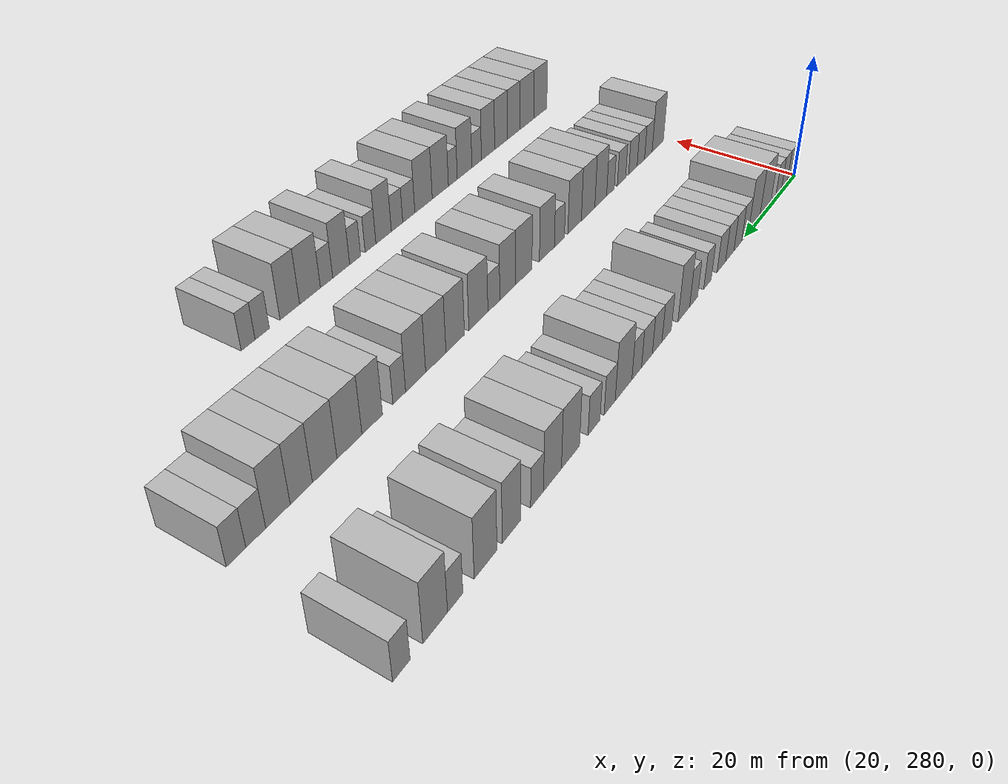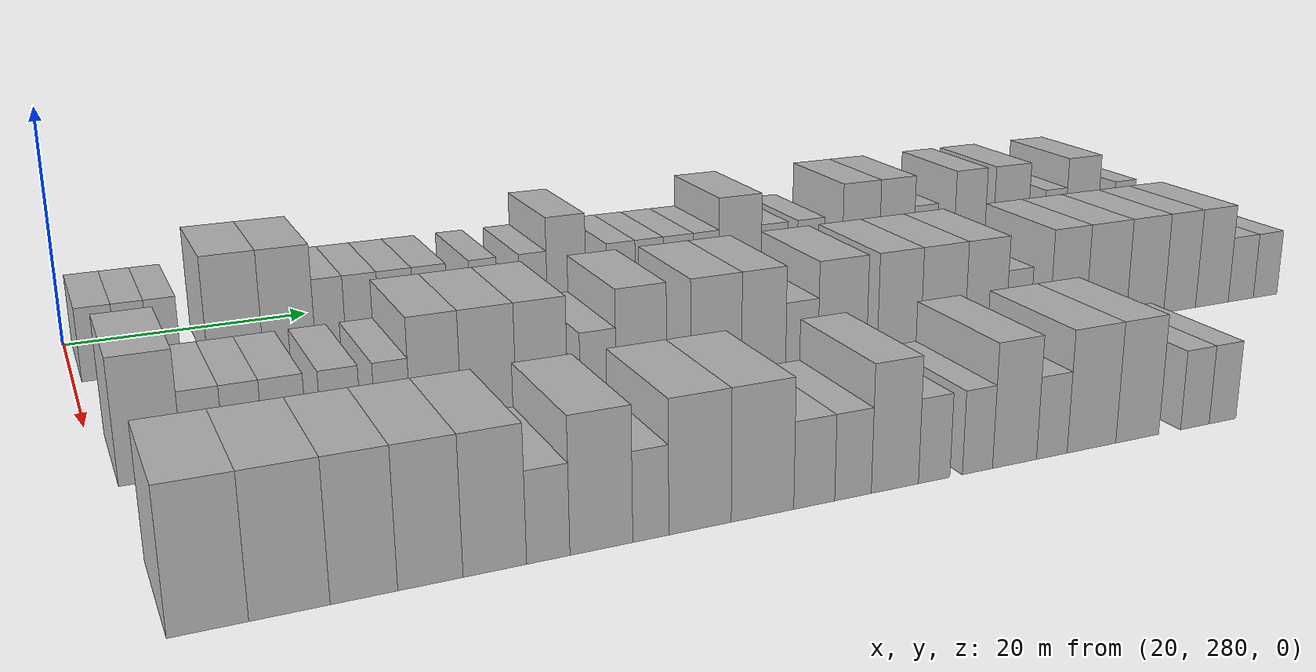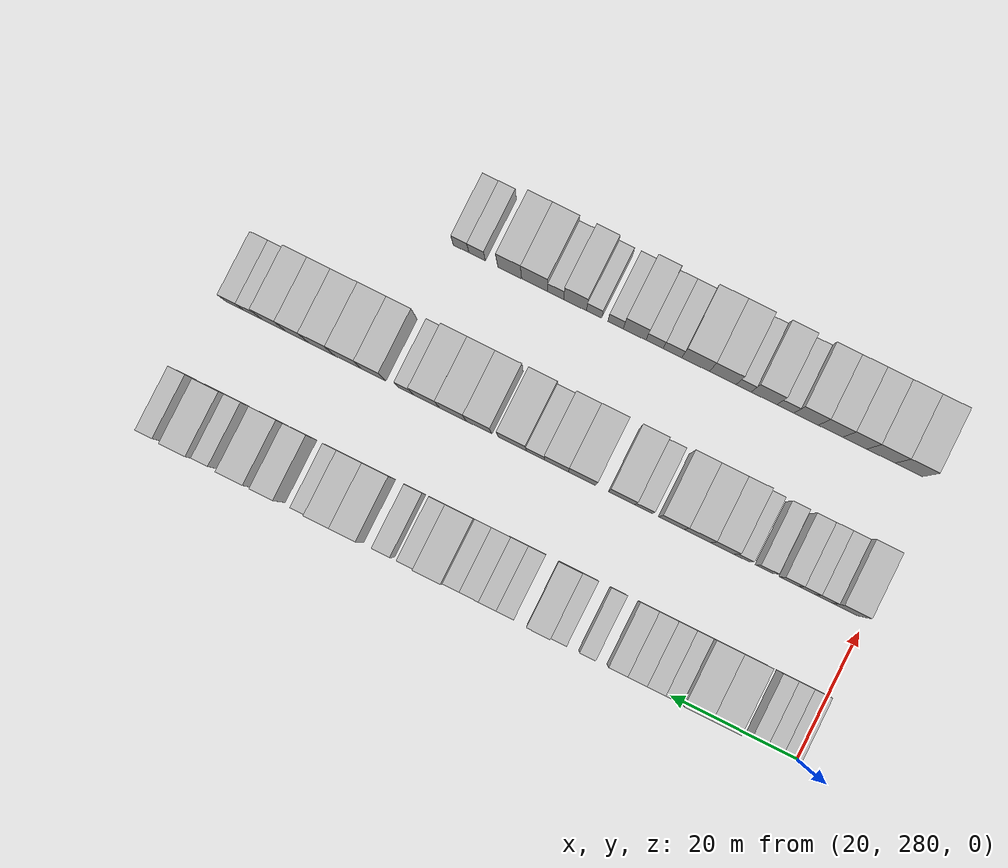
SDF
<sdf version="1.6">
 <world name="default">
  <model name="building_174">
   <static>1</static>
   <pose>25.0000 281.9792 0 0.000000 0.000000 0.000000</pose>
   <link name="link">
    <pose>0 0 3.00 0 0 0</pose>
    <collision name="collision"><geometry><box><size>10.0000 2.6993 6.0000</size></box></geometry></collision>
    <visual name="visual">
     <cast_shadows>0</cast_shadows>
     <geometry><box><size>10.0000 2.6993 6.0000</size></box></geometry>
     <material>
      <script>
       <uri>model://HANNAS_wall/materials/scripts</uri>
       <uri>model://HANNAS_wall/materials/textures</uri>
       <name>vrc/HANNAS_wall</name>
      </script>
     </material>
    </visual>
   </link>
  </model>
  <model name="building_175">
   <static>1</static>
   <pose>25.0000 284.5363 0 0.000000 0.000000 0.000000</pose>
   <link name="link">
    <pose>0 0 3.00 0 0 0</pose>
    <collision name="collision"><geometry><box><size>10.0000 2.4149 6.0000</size></box></geometry></collision>
    <visual name="visual">
     <cast_shadows>0</cast_shadows>
     <geometry><box><size>10.0000 2.4149 6.0000</size></box></geometry>
     <material>
      <script>
       <uri>model://HANNAS_wall/materials/scripts</uri>
       <uri>model://HANNAS_wall/materials/textures</uri>
       <name>vrc/HANNAS_wall</name>
      </script>
     </material>
    </visual>
   </link>
  </model>
  <model name="building_176">
   <static>1</static>
   <pose>25.0000 286.9553 0 0.000000 0.000000 0.000000</pose>
   <link name="link">
    <pose>0 0 3.00 0 0 0</pose>
    <collision name="collision"><geometry><box><size>10.0000 2.4232 6.0000</size></box></geometry></collision>
    <visual name="visual">
     <cast_shadows>0</cast_shadows>
     <geometry><box><size>10.0000 2.4232 6.0000</size></box></geometry>
     <material>
      <script>
       <uri>model://HANNAS_wall/materials/scripts</uri>
       <uri>model://HANNAS_wall/materials/textures</uri>
       <name>vrc/HANNAS_wall</name>
      </script>
     </material>
    </visual>
   </link>
  </model>
  <model name="building_177">
   <static>1</static>
   <pose>25.0000 292.3593 0 0.000000 0.000000 0.000000</pose>
   <link name="link">
    <pose>0 0 4.50 0 0 0</pose>
    <collision name="collision"><geometry><box><size>10.0000 4.3847 9.0000</size></box></geometry></collision>
    <visual name="visual">
     <cast_shadows>0</cast_shadows>
     <geometry><box><size>10.0000 4.3847 9.0000</size></box></geometry>
     <material>
      <script>
       <uri>model://HANNAS_wall/materials/scripts</uri>
       <uri>model://HANNAS_wall/materials/textures</uri>
       <name>vrc/HANNAS_wall</name>
      </script>
     </material>
    </visual>
   </link>
  </model>
  <model name="building_178">
   <static>1</static>
   <pose>25.0000 296.6781 0 0.000000 0.000000 0.000000</pose>
   <link name="link">
    <pose>0 0 4.50 0 0 0</pose>
    <collision name="collision"><geometry><box><size>10.0000 4.2529 9.0000</size></box></geometry></collision>
    <visual name="visual">
     <cast_shadows>0</cast_shadows>
     <geometry><box><size>10.0000 4.2529 9.0000</size></box></geometry>
     <material>
      <script>
       <uri>model://HANNAS_wall/materials/scripts</uri>
       <uri>model://HANNAS_wall/materials/textures</uri>
       <name>vrc/HANNAS_wall</name>
      </script>
     </material>
    </visual>
   </link>
  </model>
  <model name="building_179">
   <static>1</static>
   <pose>25.0000 300.0631 0 0.000000 0.000000 0.000000</pose>
   <link name="link">
    <pose>0 0 3.00 0 0 0</pose>
    <collision name="collision"><geometry><box><size>10.0000 2.5172 6.0000</size></box></geometry></collision>
    <visual name="visual">
     <cast_shadows>0</cast_shadows>
     <geometry><box><size>10.0000 2.5172 6.0000</size></box></geometry>
     <material>
      <script>
       <uri>model://HANNAS_wall/materials/scripts</uri>
       <uri>model://HANNAS_wall/materials/textures</uri>
       <name>vrc/HANNAS_wall</name>
      </script>
     </material>
    </visual>
   </link>
  </model>
  <model name="building_180">
   <static>1</static>
   <pose>25.0000 302.7506 0 0.000000 0.000000 0.000000</pose>
   <link name="link">
    <pose>0 0 3.00 0 0 0</pose>
    <collision name="collision"><geometry><box><size>10.0000 2.8576 6.0000</size></box></geometry></collision>
    <visual name="visual">
     <cast_shadows>0</cast_shadows>
     <geometry><box><size>10.0000 2.8576 6.0000</size></box></geometry>
     <material>
      <script>
       <uri>model://HANNAS_wall/materials/scripts</uri>
       <uri>model://HANNAS_wall/materials/textures</uri>
       <name>vrc/HANNAS_wall</name>
      </script>
     </material>
    </visual>
   </link>
  </model>
  <model name="building_181">
   <static>1</static>
   <pose>25.0000 305.6678 0 0.000000 0.000000 0.000000</pose>
   <link name="link">
    <pose>0 0 3.00 0 0 0</pose>
    <collision name="collision"><geometry><box><size>10.0000 2.9768 6.0000</size></box></geometry></collision>
    <visual name="visual">
     <cast_shadows>0</cast_shadows>
     <geometry><box><size>10.0000 2.9768 6.0000</size></box></geometry>
     <material>
      <script>
       <uri>model://HANNAS_wall/materials/scripts</uri>
       <uri>model://HANNAS_wall/materials/textures</uri>
       <name>vrc/HANNAS_wall</name>
      </script>
     </material>
    </visual>
   </link>
  </model>
  <model name="building_182">
   <static>1</static>
   <pose>25.0000 308.6237 0 0.000000 0.000000 0.000000</pose>
   <link name="link">
    <pose>0 0 3.00 0 0 0</pose>
    <collision name="collision"><geometry><box><size>10.0000 2.9351 6.0000</size></box></geometry></collision>
    <visual name="visual">
     <cast_shadows>0</cast_shadows>
     <geometry><box><size>10.0000 2.9351 6.0000</size></box></geometry>
     <material>
      <script>
       <uri>model://HANNAS_wall/materials/scripts</uri>
       <uri>model://HANNAS_wall/materials/textures</uri>
       <name>vrc/HANNAS_wall</name>
      </script>
     </material>
    </visual>
   </link>
  </model>
  <model name="building_183">
   <static>1</static>
   <pose>25.0000 313.3270 0 0.000000 0.000000 0.000000</pose>
   <link name="link">
    <pose>0 0 3.00 0 0 0</pose>
    <collision name="collision"><geometry><box><size>10.0000 2.4715 6.0000</size></box></geometry></collision>
    <visual name="visual">
     <cast_shadows>0</cast_shadows>
     <geometry><box><size>10.0000 2.4715 6.0000</size></box></geometry>
     <material>
      <script>
       <uri>model://HANNAS_wall/materials/scripts</uri>
       <uri>model://HANNAS_wall/materials/textures</uri>
       <name>vrc/HANNAS_wall</name>
      </script>
     </material>
    </visual>
   </link>
  </model>
  <model name="building_184">
   <static>1</static>
   <pose>25.0000 317.8274 0 0.000000 0.000000 0.000000</pose>
   <link name="link">
    <pose>0 0 3.00 0 0 0</pose>
    <collision name="collision"><geometry><box><size>10.0000 2.5294 6.0000</size></box></geometry></collision>
    <visual name="visual">
     <cast_shadows>0</cast_shadows>
     <geometry><box><size>10.0000 2.5294 6.0000</size></box></geometry>
     <material>
      <script>
       <uri>model://HANNAS_wall/materials/scripts</uri>
       <uri>model://HANNAS_wall/materials/textures</uri>
       <name>vrc/HANNAS_wall</name>
      </script>
     </material>
    </visual>
   </link>
  </model>
  <model name="building_185">
   <static>1</static>
   <pose>25.0000 320.9098 0 0.000000 0.000000 0.000000</pose>
   <link name="link">
    <pose>0 0 4.50 0 0 0</pose>
    <collision name="collision"><geometry><box><size>10.0000 3.6354 9.0000</size></box></geometry></collision>
    <visual name="visual">
     <cast_shadows>0</cast_shadows>
     <geometry><box><size>10.0000 3.6354 9.0000</size></box></geometry>
     <material>
      <script>
       <uri>model://HANNAS_wall/materials/scripts</uri>
       <uri>model://HANNAS_wall/materials/textures</uri>
       <name>vrc/HANNAS_wall</name>
      </script>
     </material>
    </visual>
   </link>
  </model>
  <model name="building_186">
   <static>1</static>
   <pose>25.0000 326.0894 0 0.000000 0.000000 0.000000</pose>
   <link name="link">
    <pose>0 0 3.00 0 0 0</pose>
    <collision name="collision"><geometry><box><size>10.0000 2.7237 6.0000</size></box></geometry></collision>
    <visual name="visual">
     <cast_shadows>0</cast_shadows>
     <geometry><box><size>10.0000 2.7237 6.0000</size></box></geometry>
     <material>
      <script>
       <uri>model://HANNAS_wall/materials/scripts</uri>
       <uri>model://HANNAS_wall/materials/textures</uri>
       <name>vrc/HANNAS_wall</name>
      </script>
     </material>
    </visual>
   </link>
  </model>
  <model name="building_187">
   <static>1</static>
   <pose>25.0000 328.8240 0 0.000000 0.000000 0.000000</pose>
   <link name="link">
    <pose>0 0 3.00 0 0 0</pose>
    <collision name="collision"><geometry><box><size>10.0000 2.7455 6.0000</size></box></geometry></collision>
    <visual name="visual">
     <cast_shadows>0</cast_shadows>
     <geometry><box><size>10.0000 2.7455 6.0000</size></box></geometry>
     <material>
      <script>
       <uri>model://HANNAS_wall/materials/scripts</uri>
       <uri>model://HANNAS_wall/materials/textures</uri>
       <name>vrc/HANNAS_wall</name>
      </script>
     </material>
    </visual>
   </link>
  </model>
  <model name="building_188">
   <static>1</static>
   <pose>25.0000 331.6966 0 0.000000 0.000000 0.000000</pose>
   <link name="link">
    <pose>0 0 3.00 0 0 0</pose>
    <collision name="collision"><geometry><box><size>10.0000 2.9997 6.0000</size></box></geometry></collision>
    <visual name="visual">
     <cast_shadows>0</cast_shadows>
     <geometry><box><size>10.0000 2.9997 6.0000</size></box></geometry>
     <material>
      <script>
       <uri>model://HANNAS_wall/materials/scripts</uri>
       <uri>model://HANNAS_wall/materials/textures</uri>
       <name>vrc/HANNAS_wall</name>
      </script>
     </material>
    </visual>
   </link>
  </model>
  <model name="building_189">
   <static>1</static>
   <pose>25.0000 334.4932 0 0.000000 0.000000 0.000000</pose>
   <link name="link">
    <pose>0 0 3.00 0 0 0</pose>
    <collision name="collision"><geometry><box><size>10.0000 2.5935 6.0000</size></box></geometry></collision>
    <visual name="visual">
     <cast_shadows>0</cast_shadows>
     <geometry><box><size>10.0000 2.5935 6.0000</size></box></geometry>
     <material>
      <script>
       <uri>model://HANNAS_wall/materials/scripts</uri>
       <uri>model://HANNAS_wall/materials/textures</uri>
       <name>vrc/HANNAS_wall</name>
      </script>
     </material>
    </visual>
   </link>
  </model>
  <model name="building_190">
   <static>1</static>
   <pose>25.0000 337.9641 0 0.000000 0.000000 0.000000</pose>
   <link name="link">
    <pose>0 0 4.50 0 0 0</pose>
    <collision name="collision"><geometry><box><size>10.0000 4.3481 9.0000</size></box></geometry></collision>
    <visual name="visual">
     <cast_shadows>0</cast_shadows>
     <geometry><box><size>10.0000 4.3481 9.0000</size></box></geometry>
     <material>
      <script>
       <uri>model://HANNAS_wall/materials/scripts</uri>
       <uri>model://HANNAS_wall/materials/textures</uri>
       <name>vrc/HANNAS_wall</name>
      </script>
     </material>
    </visual>
   </link>
  </model>
  <model name="building_191">
   <static>1</static>
   <pose>25.0000 341.5309 0 0.000000 0.000000 0.000000</pose>
   <link name="link">
    <pose>0 0 3.00 0 0 0</pose>
    <collision name="collision"><geometry><box><size>10.0000 2.7856 6.0000</size></box></geometry></collision>
    <visual name="visual">
     <cast_shadows>0</cast_shadows>
     <geometry><box><size>10.0000 2.7856 6.0000</size></box></geometry>
     <material>
      <script>
       <uri>model://HANNAS_wall/materials/scripts</uri>
       <uri>model://HANNAS_wall/materials/textures</uri>
       <name>vrc/HANNAS_wall</name>
      </script>
     </material>
    </visual>
   </link>
  </model>
  <model name="building_192">
   <static>1</static>
   <pose>25.0000 345.3590 0 0.000000 0.000000 0.000000</pose>
   <link name="link">
    <pose>0 0 3.00 0 0 0</pose>
    <collision name="collision"><geometry><box><size>10.0000 2.8706 6.0000</size></box></geometry></collision>
    <visual name="visual">
     <cast_shadows>0</cast_shadows>
     <geometry><box><size>10.0000 2.8706 6.0000</size></box></geometry>
     <material>
      <script>
       <uri>model://HANNAS_wall/materials/scripts</uri>
       <uri>model://HANNAS_wall/materials/textures</uri>
       <name>vrc/HANNAS_wall</name>
      </script>
     </material>
    </visual>
   </link>
  </model>
  <model name="building_193">
   <static>1</static>
   <pose>25.0000 350.8425 0 0.000000 0.000000 0.000000</pose>
   <link name="link">
    <pose>0 0 4.50 0 0 0</pose>
    <collision name="collision"><geometry><box><size>10.0000 4.0965 9.0000</size></box></geometry></collision>
    <visual name="visual">
     <cast_shadows>0</cast_shadows>
     <geometry><box><size>10.0000 4.0965 9.0000</size></box></geometry>
     <material>
      <script>
       <uri>model://HANNAS_wall/materials/scripts</uri>
       <uri>model://HANNAS_wall/materials/textures</uri>
       <name>vrc/HANNAS_wall</name>
      </script>
     </material>
    </visual>
   </link>
  </model>
  <model name="building_194">
   <static>1</static>
   <pose>25.0000 354.8311 0 0.000000 0.000000 0.000000</pose>
   <link name="link">
    <pose>0 0 4.50 0 0 0</pose>
    <collision name="collision"><geometry><box><size>10.0000 3.8807 9.0000</size></box></geometry></collision>
    <visual name="visual">
     <cast_shadows>0</cast_shadows>
     <geometry><box><size>10.0000 3.8807 9.0000</size></box></geometry>
     <material>
      <script>
       <uri>model://HANNAS_wall/materials/scripts</uri>
       <uri>model://HANNAS_wall/materials/textures</uri>
       <name>vrc/HANNAS_wall</name>
      </script>
     </material>
    </visual>
   </link>
  </model>
  <model name="building_195">
   <static>1</static>
   <pose>25.0000 358.1082 0 0.000000 0.000000 0.000000</pose>
   <link name="link">
    <pose>0 0 3.00 0 0 0</pose>
    <collision name="collision"><geometry><box><size>10.0000 2.6734 6.0000</size></box></geometry></collision>
    <visual name="visual">
     <cast_shadows>0</cast_shadows>
     <geometry><box><size>10.0000 2.6734 6.0000</size></box></geometry>
     <material>
      <script>
       <uri>model://HANNAS_wall/materials/scripts</uri>
       <uri>model://HANNAS_wall/materials/textures</uri>
       <name>vrc/HANNAS_wall</name>
      </script>
     </material>
    </visual>
   </link>
  </model>
  <model name="building_196">
   <static>1</static>
   <pose>25.0000 363.2557 0 0.000000 0.000000 0.000000</pose>
   <link name="link">
    <pose>0 0 4.50 0 0 0</pose>
    <collision name="collision"><geometry><box><size>10.0000 3.6217 9.0000</size></box></geometry></collision>
    <visual name="visual">
     <cast_shadows>0</cast_shadows>
     <geometry><box><size>10.0000 3.6217 9.0000</size></box></geometry>
     <material>
      <script>
       <uri>model://HANNAS_wall/materials/scripts</uri>
       <uri>model://HANNAS_wall/materials/textures</uri>
       <name>vrc/HANNAS_wall</name>
      </script>
     </material>
    </visual>
   </link>
  </model>
  <model name="building_197">
   <static>1</static>
   <pose>25.0000 368.1663 0 0.000000 0.000000 0.000000</pose>
   <link name="link">
    <pose>0 0 4.50 0 0 0</pose>
    <collision name="collision"><geometry><box><size>10.0000 4.1995 9.0000</size></box></geometry></collision>
    <visual name="visual">
     <cast_shadows>0</cast_shadows>
     <geometry><box><size>10.0000 4.1995 9.0000</size></box></geometry>
     <material>
      <script>
       <uri>model://HANNAS_wall/materials/scripts</uri>
       <uri>model://HANNAS_wall/materials/textures</uri>
       <name>vrc/HANNAS_wall</name>
      </script>
     </material>
    </visual>
   </link>
  </model>
  <model name="building_198">
   <static>1</static>
   <pose>25.0000 373.5846 0 0.000000 0.000000 0.000000</pose>
   <link name="link">
    <pose>0 0 3.00 0 0 0</pose>
    <collision name="collision"><geometry><box><size>10.0000 2.6371 6.0000</size></box></geometry></collision>
    <visual name="visual">
     <cast_shadows>0</cast_shadows>
     <geometry><box><size>10.0000 2.6371 6.0000</size></box></geometry>
     <material>
      <script>
       <uri>model://HANNAS_wall/materials/scripts</uri>
       <uri>model://HANNAS_wall/materials/textures</uri>
       <name>vrc/HANNAS_wall</name>
      </script>
     </material>
    </visual>
   </link>
  </model>
  <model name="building_199">
   <static>1</static>
   <pose>25.0000 376.9430 0 0.000000 0.000000 0.000000</pose>
   <link name="link">
    <pose>0 0 4.50 0 0 0</pose>
    <collision name="collision"><geometry><box><size>10.0000 4.0798 9.0000</size></box></geometry></collision>
    <visual name="visual">
     <cast_shadows>0</cast_shadows>
     <geometry><box><size>10.0000 4.0798 9.0000</size></box></geometry>
     <material>
      <script>
       <uri>model://HANNAS_wall/materials/scripts</uri>
       <uri>model://HANNAS_wall/materials/textures</uri>
       <name>vrc/HANNAS_wall</name>
      </script>
     </material>
    </visual>
   </link>
  </model>
  <model name="building_200">
   <static>1</static>
   <pose>25.0000 382.3294 0 0.000000 0.000000 0.000000</pose>
   <link name="link">
    <pose>0 0 3.00 0 0 0</pose>
    <collision name="collision"><geometry><box><size>10.0000 2.6931 6.0000</size></box></geometry></collision>
    <visual name="visual">
     <cast_shadows>0</cast_shadows>
     <geometry><box><size>10.0000 2.6931 6.0000</size></box></geometry>
     <material>
      <script>
       <uri>model://HANNAS_wall/materials/scripts</uri>
       <uri>model://HANNAS_wall/materials/textures</uri>
       <name>vrc/HANNAS_wall</name>
      </script>
     </material>
    </visual>
   </link>
  </model>
  <model name="building_369">
   <static>1</static>
   <pose>47.0000 283.2552 0 0.000000 0.000000 0.000000</pose>
   <link name="link">
    <pose>0 0 4.50 0 0 0</pose>
    <collision name="collision"><geometry><box><size>10.0000 4.1575 9.0000</size></box></geometry></collision>
    <visual name="visual">
     <cast_shadows>0</cast_shadows>
     <geometry><box><size>10.0000 4.1575 9.0000</size></box></geometry>
     <material>
      <script>
       <uri>model://HANNAS_wall/materials/scripts</uri>
       <uri>model://HANNAS_wall/materials/textures</uri>
       <name>vrc/HANNAS_wall</name>
      </script>
     </material>
    </visual>
   </link>
  </model>
  <model name="building_370">
   <static>1</static>
   <pose>47.0000 286.6943 0 0.000000 0.000000 0.000000</pose>
   <link name="link">
    <pose>0 0 3.00 0 0 0</pose>
    <collision name="collision"><geometry><box><size>10.0000 2.7209 6.0000</size></box></geometry></collision>
    <visual name="visual">
     <cast_shadows>0</cast_shadows>
     <geometry><box><size>10.0000 2.7209 6.0000</size></box></geometry>
     <material>
      <script>
       <uri>model://HANNAS_wall/materials/scripts</uri>
       <uri>model://HANNAS_wall/materials/textures</uri>
       <name>vrc/HANNAS_wall</name>
      </script>
     </material>
    </visual>
   </link>
  </model>
  <model name="building_371">
   <static>1</static>
   <pose>47.0000 289.3638 0 0.000000 0.000000 0.000000</pose>
   <link name="link">
    <pose>0 0 3.00 0 0 0</pose>
    <collision name="collision"><geometry><box><size>10.0000 2.6180 6.0000</size></box></geometry></collision>
    <visual name="visual">
     <cast_shadows>0</cast_shadows>
     <geometry><box><size>10.0000 2.6180 6.0000</size></box></geometry>
     <material>
      <script>
       <uri>model://HANNAS_wall/materials/scripts</uri>
       <uri>model://HANNAS_wall/materials/textures</uri>
       <name>vrc/HANNAS_wall</name>
      </script>
     </material>
    </visual>
   </link>
  </model>
  <model name="building_372">
   <static>1</static>
   <pose>47.0000 292.1551 0 0.000000 0.000000 0.000000</pose>
   <link name="link">
    <pose>0 0 3.00 0 0 0</pose>
    <collision name="collision"><geometry><box><size>10.0000 2.9647 6.0000</size></box></geometry></collision>
    <visual name="visual">
     <cast_shadows>0</cast_shadows>
     <geometry><box><size>10.0000 2.9647 6.0000</size></box></geometry>
     <material>
      <script>
       <uri>model://HANNAS_wall/materials/scripts</uri>
       <uri>model://HANNAS_wall/materials/textures</uri>
       <name>vrc/HANNAS_wall</name>
      </script>
     </material>
    </visual>
   </link>
  </model>
  <model name="building_373">
   <static>1</static>
   <pose>47.0000 296.0272 0 0.000000 0.000000 0.000000</pose>
   <link name="link">
    <pose>0 0 3.00 0 0 0</pose>
    <collision name="collision"><geometry><box><size>10.0000 2.7796 6.0000</size></box></geometry></collision>
    <visual name="visual">
     <cast_shadows>0</cast_shadows>
     <geometry><box><size>10.0000 2.7796 6.0000</size></box></geometry>
     <material>
      <script>
       <uri>model://HANNAS_wall/materials/scripts</uri>
       <uri>model://HANNAS_wall/materials/textures</uri>
       <name>vrc/HANNAS_wall</name>
      </script>
     </material>
    </visual>
   </link>
  </model>
  <model name="building_374">
   <static>1</static>
   <pose>47.0000 299.6677 0 0.000000 0.000000 0.000000</pose>
   <link name="link">
    <pose>0 0 3.00 0 0 0</pose>
    <collision name="collision"><geometry><box><size>10.0000 2.5014 6.0000</size></box></geometry></collision>
    <visual name="visual">
     <cast_shadows>0</cast_shadows>
     <geometry><box><size>10.0000 2.5014 6.0000</size></box></geometry>
     <material>
      <script>
       <uri>model://HANNAS_wall/materials/scripts</uri>
       <uri>model://HANNAS_wall/materials/textures</uri>
       <name>vrc/HANNAS_wall</name>
      </script>
     </material>
    </visual>
   </link>
  </model>
  <model name="building_375">
   <static>1</static>
   <pose>47.0000 302.7781 0 0.000000 0.000000 0.000000</pose>
   <link name="link">
    <pose>0 0 4.50 0 0 0</pose>
    <collision name="collision"><geometry><box><size>10.0000 3.7193 9.0000</size></box></geometry></collision>
    <visual name="visual">
     <cast_shadows>0</cast_shadows>
     <geometry><box><size>10.0000 3.7193 9.0000</size></box></geometry>
     <material>
      <script>
       <uri>model://HANNAS_wall/materials/scripts</uri>
       <uri>model://HANNAS_wall/materials/textures</uri>
       <name>vrc/HANNAS_wall</name>
      </script>
     </material>
    </visual>
   </link>
  </model>
  <model name="building_376">
   <static>1</static>
   <pose>47.0000 306.7099 0 0.000000 0.000000 0.000000</pose>
   <link name="link">
    <pose>0 0 4.50 0 0 0</pose>
    <collision name="collision"><geometry><box><size>10.0000 4.1443 9.0000</size></box></geometry></collision>
    <visual name="visual">
     <cast_shadows>0</cast_shadows>
     <geometry><box><size>10.0000 4.1443 9.0000</size></box></geometry>
     <material>
      <script>
       <uri>model://HANNAS_wall/materials/scripts</uri>
       <uri>model://HANNAS_wall/materials/textures</uri>
       <name>vrc/HANNAS_wall</name>
      </script>
     </material>
    </visual>
   </link>
  </model>
  <model name="building_377">
   <static>1</static>
   <pose>47.0000 310.7754 0 0.000000 0.000000 0.000000</pose>
   <link name="link">
    <pose>0 0 4.50 0 0 0</pose>
    <collision name="collision"><geometry><box><size>10.0000 3.9868 9.0000</size></box></geometry></collision>
    <visual name="visual">
     <cast_shadows>0</cast_shadows>
     <geometry><box><size>10.0000 3.9868 9.0000</size></box></geometry>
     <material>
      <script>
       <uri>model://HANNAS_wall/materials/scripts</uri>
       <uri>model://HANNAS_wall/materials/textures</uri>
       <name>vrc/HANNAS_wall</name>
      </script>
     </material>
    </visual>
   </link>
  </model>
  <model name="building_378">
   <static>1</static>
   <pose>47.0000 315.2013 0 0.000000 0.000000 0.000000</pose>
   <link name="link">
    <pose>0 0 3.00 0 0 0</pose>
    <collision name="collision"><geometry><box><size>10.0000 2.8651 6.0000</size></box></geometry></collision>
    <visual name="visual">
     <cast_shadows>0</cast_shadows>
     <geometry><box><size>10.0000 2.8651 6.0000</size></box></geometry>
     <material>
      <script>
       <uri>model://HANNAS_wall/materials/scripts</uri>
       <uri>model://HANNAS_wall/materials/textures</uri>
       <name>vrc/HANNAS_wall</name>
      </script>
     </material>
    </visual>
   </link>
  </model>
  <model name="building_379">
   <static>1</static>
   <pose>47.0000 318.7020 0 0.000000 0.000000 0.000000</pose>
   <link name="link">
    <pose>0 0 4.50 0 0 0</pose>
    <collision name="collision"><geometry><box><size>10.0000 4.1364 9.0000</size></box></geometry></collision>
    <visual name="visual">
     <cast_shadows>0</cast_shadows>
     <geometry><box><size>10.0000 4.1364 9.0000</size></box></geometry>
     <material>
      <script>
       <uri>model://HANNAS_wall/materials/scripts</uri>
       <uri>model://HANNAS_wall/materials/textures</uri>
       <name>vrc/HANNAS_wall</name>
      </script>
     </material>
    </visual>
   </link>
  </model>
  <model name="building_380">
   <static>1</static>
   <pose>47.0000 324.9494 0 0.000000 0.000000 0.000000</pose>
   <link name="link">
    <pose>0 0 4.50 0 0 0</pose>
    <collision name="collision"><geometry><box><size>10.0000 4.3584 9.0000</size></box></geometry></collision>
    <visual name="visual">
     <cast_shadows>0</cast_shadows>
     <geometry><box><size>10.0000 4.3584 9.0000</size></box></geometry>
     <material>
      <script>
       <uri>model://HANNAS_wall/materials/scripts</uri>
       <uri>model://HANNAS_wall/materials/textures</uri>
       <name>vrc/HANNAS_wall</name>
      </script>
     </material>
    </visual>
   </link>
  </model>
  <model name="building_381">
   <static>1</static>
   <pose>47.0000 329.0612 0 0.000000 0.000000 0.000000</pose>
   <link name="link">
    <pose>0 0 4.50 0 0 0</pose>
    <collision name="collision"><geometry><box><size>10.0000 3.8650 9.0000</size></box></geometry></collision>
    <visual name="visual">
     <cast_shadows>0</cast_shadows>
     <geometry><box><size>10.0000 3.8650 9.0000</size></box></geometry>
     <material>
      <script>
       <uri>model://HANNAS_wall/materials/scripts</uri>
       <uri>model://HANNAS_wall/materials/textures</uri>
       <name>vrc/HANNAS_wall</name>
      </script>
     </material>
    </visual>
   </link>
  </model>
  <model name="building_382">
   <static>1</static>
   <pose>47.0000 332.4426 0 0.000000 0.000000 0.000000</pose>
   <link name="link">
    <pose>0 0 3.00 0 0 0</pose>
    <collision name="collision"><geometry><box><size>10.0000 2.8979 6.0000</size></box></geometry></collision>
    <visual name="visual">
     <cast_shadows>0</cast_shadows>
     <geometry><box><size>10.0000 2.8979 6.0000</size></box></geometry>
     <material>
      <script>
       <uri>model://HANNAS_wall/materials/scripts</uri>
       <uri>model://HANNAS_wall/materials/textures</uri>
       <name>vrc/HANNAS_wall</name>
      </script>
     </material>
    </visual>
   </link>
  </model>
  <model name="building_383">
   <static>1</static>
   <pose>47.0000 336.1310 0 0.000000 0.000000 0.000000</pose>
   <link name="link">
    <pose>0 0 4.50 0 0 0</pose>
    <collision name="collision"><geometry><box><size>10.0000 4.4790 9.0000</size></box></geometry></collision>
    <visual name="visual">
     <cast_shadows>0</cast_shadows>
     <geometry><box><size>10.0000 4.4790 9.0000</size></box></geometry>
     <material>
      <script>
       <uri>model://HANNAS_wall/materials/scripts</uri>
       <uri>model://HANNAS_wall/materials/textures</uri>
       <name>vrc/HANNAS_wall</name>
      </script>
     </material>
    </visual>
   </link>
  </model>
  <model name="building_384">
   <static>1</static>
   <pose>47.0000 341.4304 0 0.000000 0.000000 0.000000</pose>
   <link name="link">
    <pose>0 0 4.50 0 0 0</pose>
    <collision name="collision"><geometry><box><size>10.0000 4.1199 9.0000</size></box></geometry></collision>
    <visual name="visual">
     <cast_shadows>0</cast_shadows>
     <geometry><box><size>10.0000 4.1199 9.0000</size></box></geometry>
     <material>
      <script>
       <uri>model://HANNAS_wall/materials/scripts</uri>
       <uri>model://HANNAS_wall/materials/textures</uri>
       <name>vrc/HANNAS_wall</name>
      </script>
     </material>
    </visual>
   </link>
  </model>
  <model name="building_385">
   <static>1</static>
   <pose>47.0000 345.6515 0 0.000000 0.000000 0.000000</pose>
   <link name="link">
    <pose>0 0 4.50 0 0 0</pose>
    <collision name="collision"><geometry><box><size>10.0000 4.3223 9.0000</size></box></geometry></collision>
    <visual name="visual">
     <cast_shadows>0</cast_shadows>
     <geometry><box><size>10.0000 4.3223 9.0000</size></box></geometry>
     <material>
      <script>
       <uri>model://HANNAS_wall/materials/scripts</uri>
       <uri>model://HANNAS_wall/materials/textures</uri>
       <name>vrc/HANNAS_wall</name>
      </script>
     </material>
    </visual>
   </link>
  </model>
  <model name="building_386">
   <static>1</static>
   <pose>47.0000 349.8680 0 0.000000 0.000000 0.000000</pose>
   <link name="link">
    <pose>0 0 4.50 0 0 0</pose>
    <collision name="collision"><geometry><box><size>10.0000 4.1105 9.0000</size></box></geometry></collision>
    <visual name="visual">
     <cast_shadows>0</cast_shadows>
     <geometry><box><size>10.0000 4.1105 9.0000</size></box></geometry>
     <material>
      <script>
       <uri>model://HANNAS_wall/materials/scripts</uri>
       <uri>model://HANNAS_wall/materials/textures</uri>
       <name>vrc/HANNAS_wall</name>
      </script>
     </material>
    </visual>
   </link>
  </model>
  <model name="building_387">
   <static>1</static>
   <pose>47.0000 353.1828 0 0.000000 0.000000 0.000000</pose>
   <link name="link">
    <pose>0 0 3.00 0 0 0</pose>
    <collision name="collision"><geometry><box><size>10.0000 2.5192 6.0000</size></box></geometry></collision>
    <visual name="visual">
     <cast_shadows>0</cast_shadows>
     <geometry><box><size>10.0000 2.5192 6.0000</size></box></geometry>
     <material>
      <script>
       <uri>model://HANNAS_wall/materials/scripts</uri>
       <uri>model://HANNAS_wall/materials/textures</uri>
       <name>vrc/HANNAS_wall</name>
      </script>
     </material>
    </visual>
   </link>
  </model>
  <model name="building_388">
   <static>1</static>
   <pose>47.0000 358.3617 0 0.000000 0.000000 0.000000</pose>
   <link name="link">
    <pose>0 0 4.50 0 0 0</pose>
    <collision name="collision"><geometry><box><size>10.0000 3.8384 9.0000</size></box></geometry></collision>
    <visual name="visual">
     <cast_shadows>0</cast_shadows>
     <geometry><box><size>10.0000 3.8384 9.0000</size></box></geometry>
     <material>
      <script>
       <uri>model://HANNAS_wall/materials/scripts</uri>
       <uri>model://HANNAS_wall/materials/textures</uri>
       <name>vrc/HANNAS_wall</name>
      </script>
     </material>
    </visual>
   </link>
  </model>
  <model name="building_389">
   <static>1</static>
   <pose>47.0000 362.5039 0 0.000000 0.000000 0.000000</pose>
   <link name="link">
    <pose>0 0 4.50 0 0 0</pose>
    <collision name="collision"><geometry><box><size>10.0000 4.4462 9.0000</size></box></geometry></collision>
    <visual name="visual">
     <cast_shadows>0</cast_shadows>
     <geometry><box><size>10.0000 4.4462 9.0000</size></box></geometry>
     <material>
      <script>
       <uri>model://HANNAS_wall/materials/scripts</uri>
       <uri>model://HANNAS_wall/materials/textures</uri>
       <name>vrc/HANNAS_wall</name>
      </script>
     </material>
    </visual>
   </link>
  </model>
  <model name="building_390">
   <static>1</static>
   <pose>47.0000 366.8138 0 0.000000 0.000000 0.000000</pose>
   <link name="link">
    <pose>0 0 4.50 0 0 0</pose>
    <collision name="collision"><geometry><box><size>10.0000 4.1736 9.0000</size></box></geometry></collision>
    <visual name="visual">
     <cast_shadows>0</cast_shadows>
     <geometry><box><size>10.0000 4.1736 9.0000</size></box></geometry>
     <material>
      <script>
       <uri>model://HANNAS_wall/materials/scripts</uri>
       <uri>model://HANNAS_wall/materials/textures</uri>
       <name>vrc/HANNAS_wall</name>
      </script>
     </material>
    </visual>
   </link>
  </model>
  <model name="building_391">
   <static>1</static>
   <pose>47.0000 370.7113 0 0.000000 0.000000 0.000000</pose>
   <link name="link">
    <pose>0 0 4.50 0 0 0</pose>
    <collision name="collision"><geometry><box><size>10.0000 3.6214 9.0000</size></box></geometry></collision>
    <visual name="visual">
     <cast_shadows>0</cast_shadows>
     <geometry><box><size>10.0000 3.6214 9.0000</size></box></geometry>
     <material>
      <script>
       <uri>model://HANNAS_wall/materials/scripts</uri>
       <uri>model://HANNAS_wall/materials/textures</uri>
       <name>vrc/HANNAS_wall</name>
      </script>
     </material>
    </visual>
   </link>
  </model>
  <model name="building_392">
   <static>1</static>
   <pose>47.0000 374.4277 0 0.000000 0.000000 0.000000</pose>
   <link name="link">
    <pose>0 0 4.50 0 0 0</pose>
    <collision name="collision"><geometry><box><size>10.0000 3.8114 9.0000</size></box></geometry></collision>
    <visual name="visual">
     <cast_shadows>0</cast_shadows>
     <geometry><box><size>10.0000 3.8114 9.0000</size></box></geometry>
     <material>
      <script>
       <uri>model://HANNAS_wall/materials/scripts</uri>
       <uri>model://HANNAS_wall/materials/textures</uri>
       <name>vrc/HANNAS_wall</name>
      </script>
     </material>
    </visual>
   </link>
  </model>
  <model name="building_393">
   <static>1</static>
   <pose>47.0000 377.8204 0 0.000000 0.000000 0.000000</pose>
   <link name="link">
    <pose>0 0 3.00 0 0 0</pose>
    <collision name="collision"><geometry><box><size>10.0000 2.9740 6.0000</size></box></geometry></collision>
    <visual name="visual">
     <cast_shadows>0</cast_shadows>
     <geometry><box><size>10.0000 2.9740 6.0000</size></box></geometry>
     <material>
      <script>
       <uri>model://HANNAS_wall/materials/scripts</uri>
       <uri>model://HANNAS_wall/materials/textures</uri>
       <name>vrc/HANNAS_wall</name>
      </script>
     </material>
    </visual>
   </link>
  </model>
  <model name="building_394">
   <static>1</static>
   <pose>47.0000 380.7238 0 0.000000 0.000000 0.000000</pose>
   <link name="link">
    <pose>0 0 3.00 0 0 0</pose>
    <collision name="collision"><geometry><box><size>10.0000 2.8329 6.0000</size></box></geometry></collision>
    <visual name="visual">
     <cast_shadows>0</cast_shadows>
     <geometry><box><size>10.0000 2.8329 6.0000</size></box></geometry>
     <material>
      <script>
       <uri>model://HANNAS_wall/materials/scripts</uri>
       <uri>model://HANNAS_wall/materials/textures</uri>
       <name>vrc/HANNAS_wall</name>
      </script>
     </material>
    </visual>
   </link>
  </model>
  <model name="building_552">
   <static>1</static>
   <pose>69.0000 283.6318 0 0.000000 0.000000 0.000000</pose>
   <link name="link">
    <pose>0 0 4.50 0 0 0</pose>
    <collision name="collision"><geometry><box><size>10.0000 4.3588 9.0000</size></box></geometry></collision>
    <visual name="visual">
     <cast_shadows>0</cast_shadows>
     <geometry><box><size>10.0000 4.3588 9.0000</size></box></geometry>
     <material>
      <script>
       <uri>model://HANNAS_wall/materials/scripts</uri>
       <uri>model://HANNAS_wall/materials/textures</uri>
       <name>vrc/HANNAS_wall</name>
      </script>
     </material>
    </visual>
   </link>
  </model>
  <model name="building_553">
   <static>1</static>
   <pose>69.0000 288.0538 0 0.000000 0.000000 0.000000</pose>
   <link name="link">
    <pose>0 0 4.50 0 0 0</pose>
    <collision name="collision"><geometry><box><size>10.0000 4.4853 9.0000</size></box></geometry></collision>
    <visual name="visual">
     <cast_shadows>0</cast_shadows>
     <geometry><box><size>10.0000 4.4853 9.0000</size></box></geometry>
     <material>
      <script>
       <uri>model://HANNAS_wall/materials/scripts</uri>
       <uri>model://HANNAS_wall/materials/textures</uri>
       <name>vrc/HANNAS_wall</name>
      </script>
     </material>
    </visual>
   </link>
  </model>
  <model name="building_554">
   <static>1</static>
   <pose>69.0000 292.2299 0 0.000000 0.000000 0.000000</pose>
   <link name="link">
    <pose>0 0 4.50 0 0 0</pose>
    <collision name="collision"><geometry><box><size>10.0000 3.8668 9.0000</size></box></geometry></collision>
    <visual name="visual">
     <cast_shadows>0</cast_shadows>
     <geometry><box><size>10.0000 3.8668 9.0000</size></box></geometry>
     <material>
      <script>
       <uri>model://HANNAS_wall/materials/scripts</uri>
       <uri>model://HANNAS_wall/materials/textures</uri>
       <name>vrc/HANNAS_wall</name>
      </script>
     </material>
    </visual>
   </link>
  </model>
  <model name="building_555">
   <static>1</static>
   <pose>69.0000 296.0971 0 0.000000 0.000000 0.000000</pose>
   <link name="link">
    <pose>0 0 4.50 0 0 0</pose>
    <collision name="collision"><geometry><box><size>10.0000 3.8676 9.0000</size></box></geometry></collision>
    <visual name="visual">
     <cast_shadows>0</cast_shadows>
     <geometry><box><size>10.0000 3.8676 9.0000</size></box></geometry>
     <material>
      <script>
       <uri>model://HANNAS_wall/materials/scripts</uri>
       <uri>model://HANNAS_wall/materials/textures</uri>
       <name>vrc/HANNAS_wall</name>
      </script>
     </material>
    </visual>
   </link>
  </model>
  <model name="building_556">
   <static>1</static>
   <pose>69.0000 299.9793 0 0.000000 0.000000 0.000000</pose>
   <link name="link">
    <pose>0 0 4.50 0 0 0</pose>
    <collision name="collision"><geometry><box><size>10.0000 3.8968 9.0000</size></box></geometry></collision>
    <visual name="visual">
     <cast_shadows>0</cast_shadows>
     <geometry><box><size>10.0000 3.8968 9.0000</size></box></geometry>
     <material>
      <script>
       <uri>model://HANNAS_wall/materials/scripts</uri>
       <uri>model://HANNAS_wall/materials/textures</uri>
       <name>vrc/HANNAS_wall</name>
      </script>
     </material>
    </visual>
   </link>
  </model>
  <model name="building_557">
   <static>1</static>
   <pose>69.0000 303.2934 0 0.000000 0.000000 0.000000</pose>
   <link name="link">
    <pose>0 0 3.00 0 0 0</pose>
    <collision name="collision"><geometry><box><size>10.0000 2.7314 6.0000</size></box></geometry></collision>
    <visual name="visual">
     <cast_shadows>0</cast_shadows>
     <geometry><box><size>10.0000 2.7314 6.0000</size></box></geometry>
     <material>
      <script>
       <uri>model://HANNAS_wall/materials/scripts</uri>
       <uri>model://HANNAS_wall/materials/textures</uri>
       <name>vrc/HANNAS_wall</name>
      </script>
     </material>
    </visual>
   </link>
  </model>
  <model name="building_558">
   <static>1</static>
   <pose>69.0000 306.7009 0 0.000000 0.000000 0.000000</pose>
   <link name="link">
    <pose>0 0 4.50 0 0 0</pose>
    <collision name="collision"><geometry><box><size>10.0000 4.0836 9.0000</size></box></geometry></collision>
    <visual name="visual">
     <cast_shadows>0</cast_shadows>
     <geometry><box><size>10.0000 4.0836 9.0000</size></box></geometry>
     <material>
      <script>
       <uri>model://HANNAS_wall/materials/scripts</uri>
       <uri>model://HANNAS_wall/materials/textures</uri>
       <name>vrc/HANNAS_wall</name>
      </script>
     </material>
    </visual>
   </link>
  </model>
  <model name="building_559">
   <static>1</static>
   <pose>69.0000 309.9451 0 0.000000 0.000000 0.000000</pose>
   <link name="link">
    <pose>0 0 3.00 0 0 0</pose>
    <collision name="collision"><geometry><box><size>10.0000 2.4049 6.0000</size></box></geometry></collision>
    <visual name="visual">
     <cast_shadows>0</cast_shadows>
     <geometry><box><size>10.0000 2.4049 6.0000</size></box></geometry>
     <material>
      <script>
       <uri>model://HANNAS_wall/materials/scripts</uri>
       <uri>model://HANNAS_wall/materials/textures</uri>
       <name>vrc/HANNAS_wall</name>
      </script>
     </material>
    </visual>
   </link>
  </model>
  <model name="building_560">
   <static>1</static>
   <pose>69.0000 313.2863 0 0.000000 0.000000 0.000000</pose>
   <link name="link">
    <pose>0 0 4.50 0 0 0</pose>
    <collision name="collision"><geometry><box><size>10.0000 4.2774 9.0000</size></box></geometry></collision>
    <visual name="visual">
     <cast_shadows>0</cast_shadows>
     <geometry><box><size>10.0000 4.2774 9.0000</size></box></geometry>
     <material>
      <script>
       <uri>model://HANNAS_wall/materials/scripts</uri>
       <uri>model://HANNAS_wall/materials/textures</uri>
       <name>vrc/HANNAS_wall</name>
      </script>
     </material>
    </visual>
   </link>
  </model>
  <model name="building_561">
   <static>1</static>
   <pose>69.0000 317.6499 0 0.000000 0.000000 0.000000</pose>
   <link name="link">
    <pose>0 0 4.50 0 0 0</pose>
    <collision name="collision"><geometry><box><size>10.0000 4.4499 9.0000</size></box></geometry></collision>
    <visual name="visual">
     <cast_shadows>0</cast_shadows>
     <geometry><box><size>10.0000 4.4499 9.0000</size></box></geometry>
     <material>
      <script>
       <uri>model://HANNAS_wall/materials/scripts</uri>
       <uri>model://HANNAS_wall/materials/textures</uri>
       <name>vrc/HANNAS_wall</name>
      </script>
     </material>
    </visual>
   </link>
  </model>
  <model name="building_562">
   <static>1</static>
   <pose>69.0000 321.3739 0 0.000000 0.000000 0.000000</pose>
   <link name="link">
    <pose>0 0 3.00 0 0 0</pose>
    <collision name="collision"><geometry><box><size>10.0000 2.9981 6.0000</size></box></geometry></collision>
    <visual name="visual">
     <cast_shadows>0</cast_shadows>
     <geometry><box><size>10.0000 2.9981 6.0000</size></box></geometry>
     <material>
      <script>
       <uri>model://HANNAS_wall/materials/scripts</uri>
       <uri>model://HANNAS_wall/materials/textures</uri>
       <name>vrc/HANNAS_wall</name>
      </script>
     </material>
    </visual>
   </link>
  </model>
  <model name="building_563">
   <static>1</static>
   <pose>69.0000 324.2467 0 0.000000 0.000000 0.000000</pose>
   <link name="link">
    <pose>0 0 3.00 0 0 0</pose>
    <collision name="collision"><geometry><box><size>10.0000 2.7474 6.0000</size></box></geometry></collision>
    <visual name="visual">
     <cast_shadows>0</cast_shadows>
     <geometry><box><size>10.0000 2.7474 6.0000</size></box></geometry>
     <material>
      <script>
       <uri>model://HANNAS_wall/materials/scripts</uri>
       <uri>model://HANNAS_wall/materials/textures</uri>
       <name>vrc/HANNAS_wall</name>
      </script>
     </material>
    </visual>
   </link>
  </model>
  <model name="building_564">
   <static>1</static>
   <pose>69.0000 327.4346 0 0.000000 0.000000 0.000000</pose>
   <link name="link">
    <pose>0 0 4.50 0 0 0</pose>
    <collision name="collision"><geometry><box><size>10.0000 3.6283 9.0000</size></box></geometry></collision>
    <visual name="visual">
     <cast_shadows>0</cast_shadows>
     <geometry><box><size>10.0000 3.6283 9.0000</size></box></geometry>
     <material>
      <script>
       <uri>model://HANNAS_wall/materials/scripts</uri>
       <uri>model://HANNAS_wall/materials/textures</uri>
       <name>vrc/HANNAS_wall</name>
      </script>
     </material>
    </visual>
   </link>
  </model>
  <model name="building_565">
   <static>1</static>
   <pose>69.0000 330.4855 0 0.000000 0.000000 0.000000</pose>
   <link name="link">
    <pose>0 0 3.00 0 0 0</pose>
    <collision name="collision"><geometry><box><size>10.0000 2.4736 6.0000</size></box></geometry></collision>
    <visual name="visual">
     <cast_shadows>0</cast_shadows>
     <geometry><box><size>10.0000 2.4736 6.0000</size></box></geometry>
     <material>
      <script>
       <uri>model://HANNAS_wall/materials/scripts</uri>
       <uri>model://HANNAS_wall/materials/textures</uri>
       <name>vrc/HANNAS_wall</name>
      </script>
     </material>
    </visual>
   </link>
  </model>
  <model name="building_566">
   <static>1</static>
   <pose>69.0000 333.9412 0 0.000000 0.000000 0.000000</pose>
   <link name="link">
    <pose>0 0 3.00 0 0 0</pose>
    <collision name="collision"><geometry><box><size>10.0000 2.4378 6.0000</size></box></geometry></collision>
    <visual name="visual">
     <cast_shadows>0</cast_shadows>
     <geometry><box><size>10.0000 2.4378 6.0000</size></box></geometry>
     <material>
      <script>
       <uri>model://HANNAS_wall/materials/scripts</uri>
       <uri>model://HANNAS_wall/materials/textures</uri>
       <name>vrc/HANNAS_wall</name>
      </script>
     </material>
    </visual>
   </link>
  </model>
  <model name="building_567">
   <static>1</static>
   <pose>69.0000 336.9810 0 0.000000 0.000000 0.000000</pose>
   <link name="link">
    <pose>0 0 4.50 0 0 0</pose>
    <collision name="collision"><geometry><box><size>10.0000 3.6419 9.0000</size></box></geometry></collision>
    <visual name="visual">
     <cast_shadows>0</cast_shadows>
     <geometry><box><size>10.0000 3.6419 9.0000</size></box></geometry>
     <material>
      <script>
       <uri>model://HANNAS_wall/materials/scripts</uri>
       <uri>model://HANNAS_wall/materials/textures</uri>
       <name>vrc/HANNAS_wall</name>
      </script>
     </material>
    </visual>
   </link>
  </model>
  <model name="building_568">
   <static>1</static>
   <pose>69.0000 340.0978 0 0.000000 0.000000 0.000000</pose>
   <link name="link">
    <pose>0 0 3.00 0 0 0</pose>
    <collision name="collision"><geometry><box><size>10.0000 2.5915 6.0000</size></box></geometry></collision>
    <visual name="visual">
     <cast_shadows>0</cast_shadows>
     <geometry><box><size>10.0000 2.5915 6.0000</size></box></geometry>
     <material>
      <script>
       <uri>model://HANNAS_wall/materials/scripts</uri>
       <uri>model://HANNAS_wall/materials/textures</uri>
       <name>vrc/HANNAS_wall</name>
      </script>
     </material>
    </visual>
   </link>
  </model>
  <model name="building_569">
   <static>1</static>
   <pose>69.0000 343.5095 0 0.000000 0.000000 0.000000</pose>
   <link name="link">
    <pose>0 0 4.50 0 0 0</pose>
    <collision name="collision"><geometry><box><size>10.0000 4.2320 9.0000</size></box></geometry></collision>
    <visual name="visual">
     <cast_shadows>0</cast_shadows>
     <geometry><box><size>10.0000 4.2320 9.0000</size></box></geometry>
     <material>
      <script>
       <uri>model://HANNAS_wall/materials/scripts</uri>
       <uri>model://HANNAS_wall/materials/textures</uri>
       <name>vrc/HANNAS_wall</name>
      </script>
     </material>
    </visual>
   </link>
  </model>
  <model name="building_570">
   <static>1</static>
   <pose>69.0000 347.5451 0 0.000000 0.000000 0.000000</pose>
   <link name="link">
    <pose>0 0 4.50 0 0 0</pose>
    <collision name="collision"><geometry><box><size>10.0000 3.8393 9.0000</size></box></geometry></collision>
    <visual name="visual">
     <cast_shadows>0</cast_shadows>
     <geometry><box><size>10.0000 3.8393 9.0000</size></box></geometry>
     <material>
      <script>
       <uri>model://HANNAS_wall/materials/scripts</uri>
       <uri>model://HANNAS_wall/materials/textures</uri>
       <name>vrc/HANNAS_wall</name>
      </script>
     </material>
    </visual>
   </link>
  </model>
  <model name="building_571">
   <static>1</static>
   <pose>69.0000 352.7918 0 0.000000 0.000000 0.000000</pose>
   <link name="link">
    <pose>0 0 3.00 0 0 0</pose>
    <collision name="collision"><geometry><box><size>10.0000 2.6540 6.0000</size></box></geometry></collision>
    <visual name="visual">
     <cast_shadows>0</cast_shadows>
     <geometry><box><size>10.0000 2.6540 6.0000</size></box></geometry>
     <material>
      <script>
       <uri>model://HANNAS_wall/materials/scripts</uri>
       <uri>model://HANNAS_wall/materials/textures</uri>
       <name>vrc/HANNAS_wall</name>
      </script>
     </material>
    </visual>
   </link>
  </model>
  <model name="building_572">
   <static>1</static>
   <pose>69.0000 355.3821 0 0.000000 0.000000 0.000000</pose>
   <link name="link">
    <pose>0 0 3.00 0 0 0</pose>
    <collision name="collision"><geometry><box><size>10.0000 2.5267 6.0000</size></box></geometry></collision>
    <visual name="visual">
     <cast_shadows>0</cast_shadows>
     <geometry><box><size>10.0000 2.5267 6.0000</size></box></geometry>
     <material>
      <script>
       <uri>model://HANNAS_wall/materials/scripts</uri>
       <uri>model://HANNAS_wall/materials/textures</uri>
       <name>vrc/HANNAS_wall</name>
      </script>
     </material>
    </visual>
   </link>
  </model>
 </world>
</sdf>
